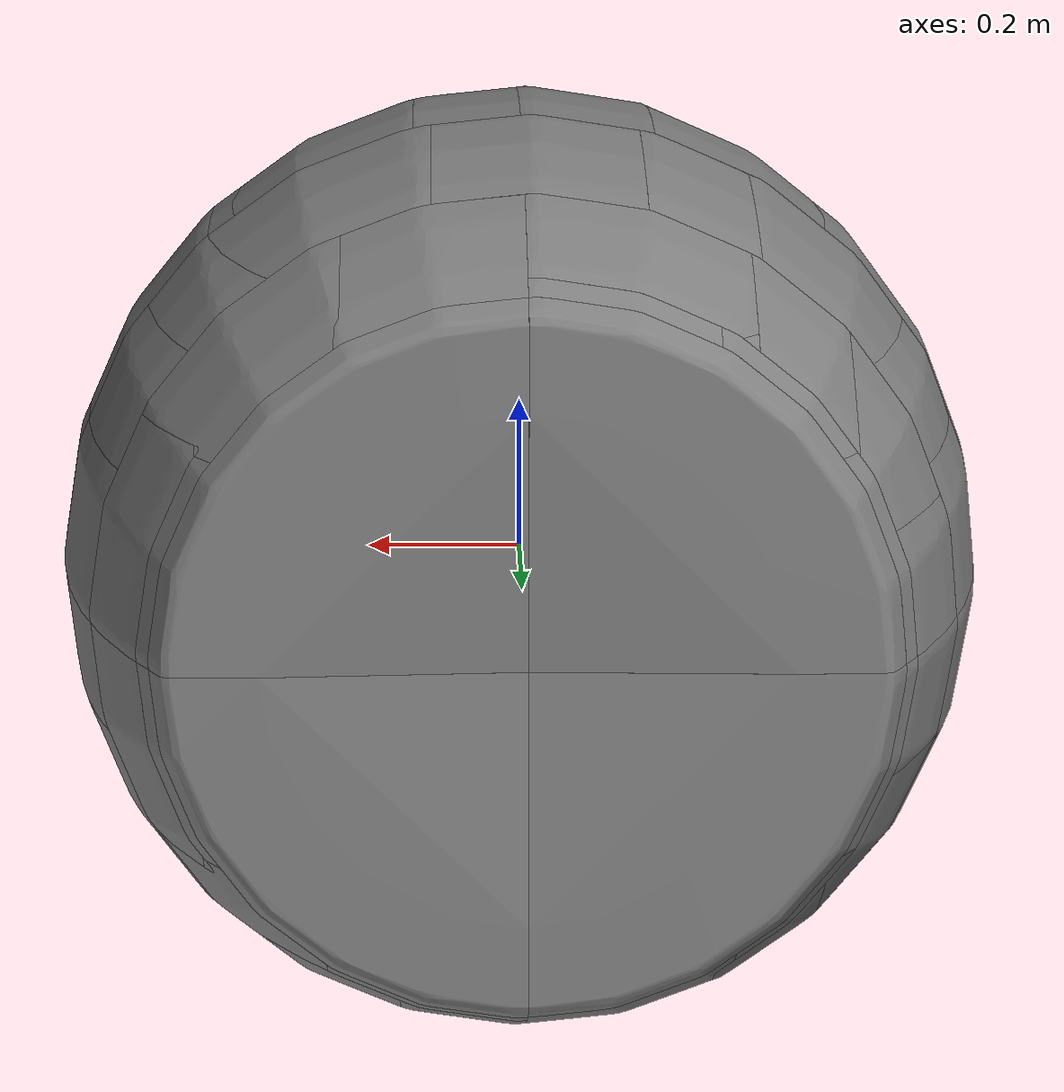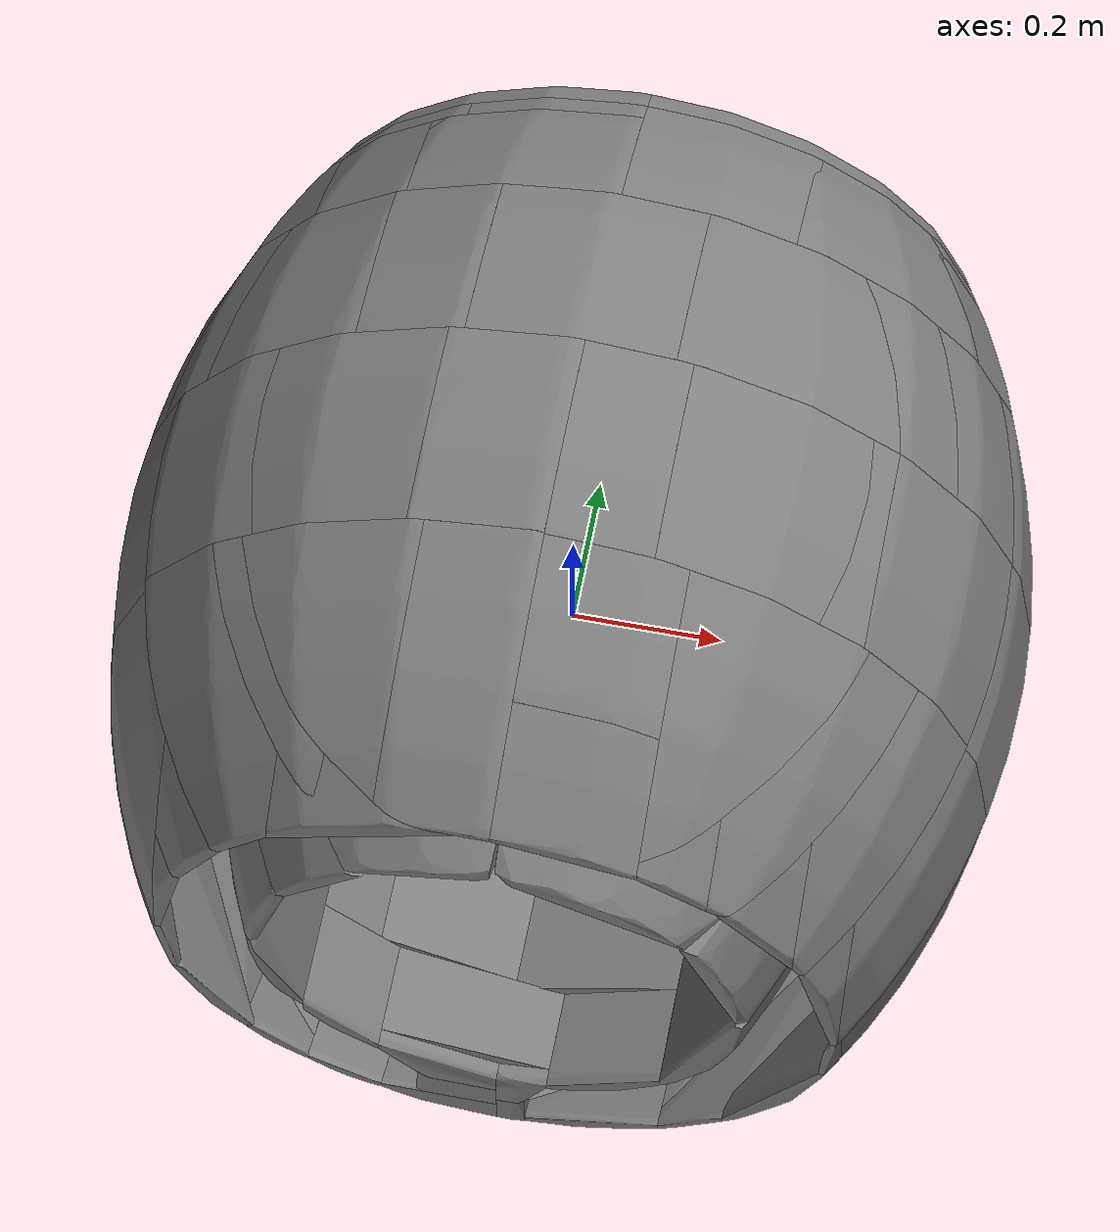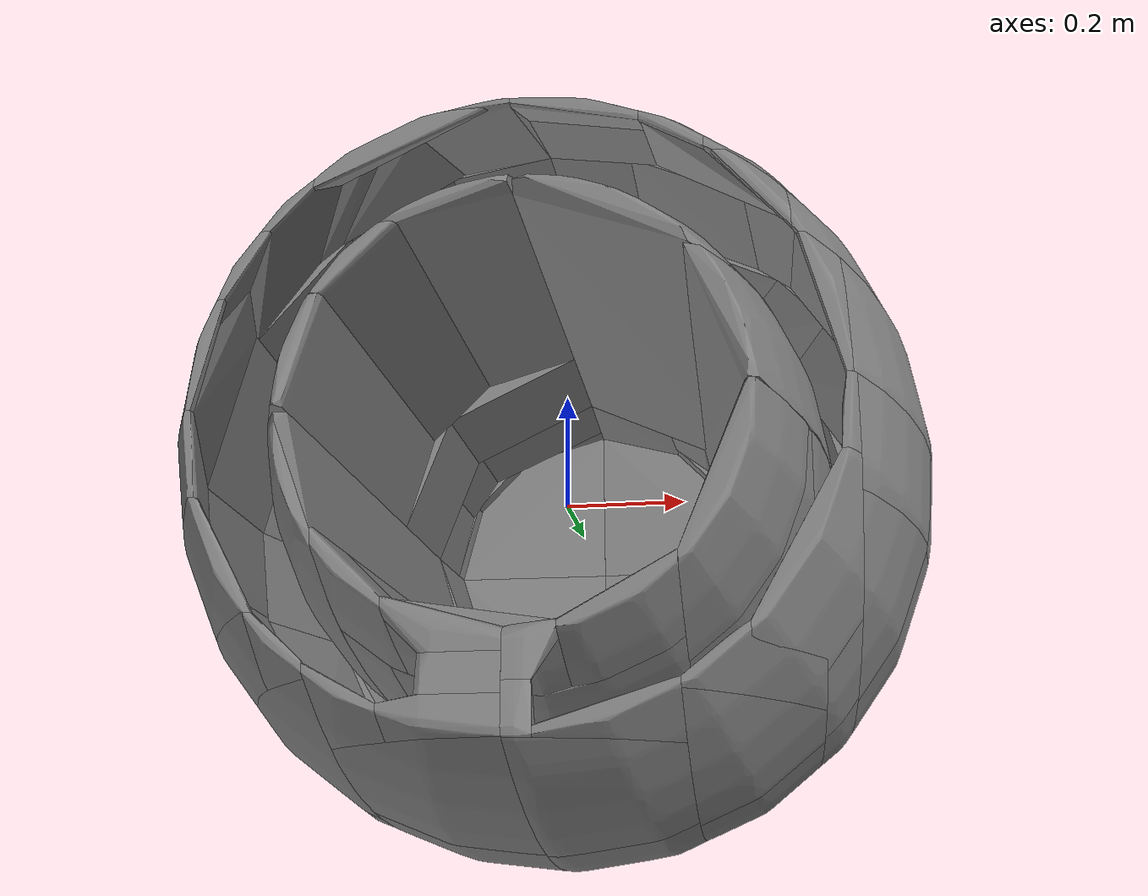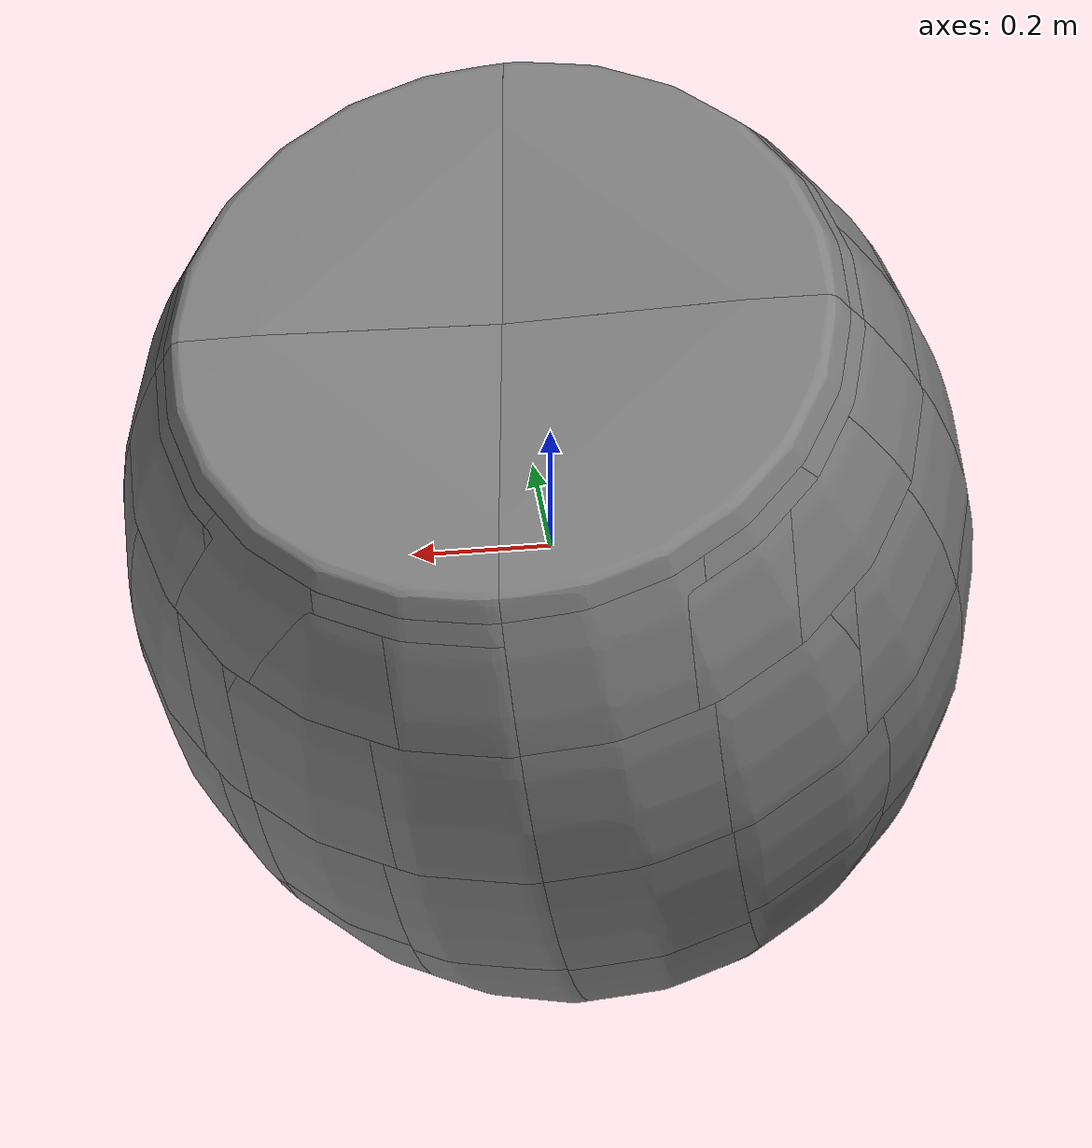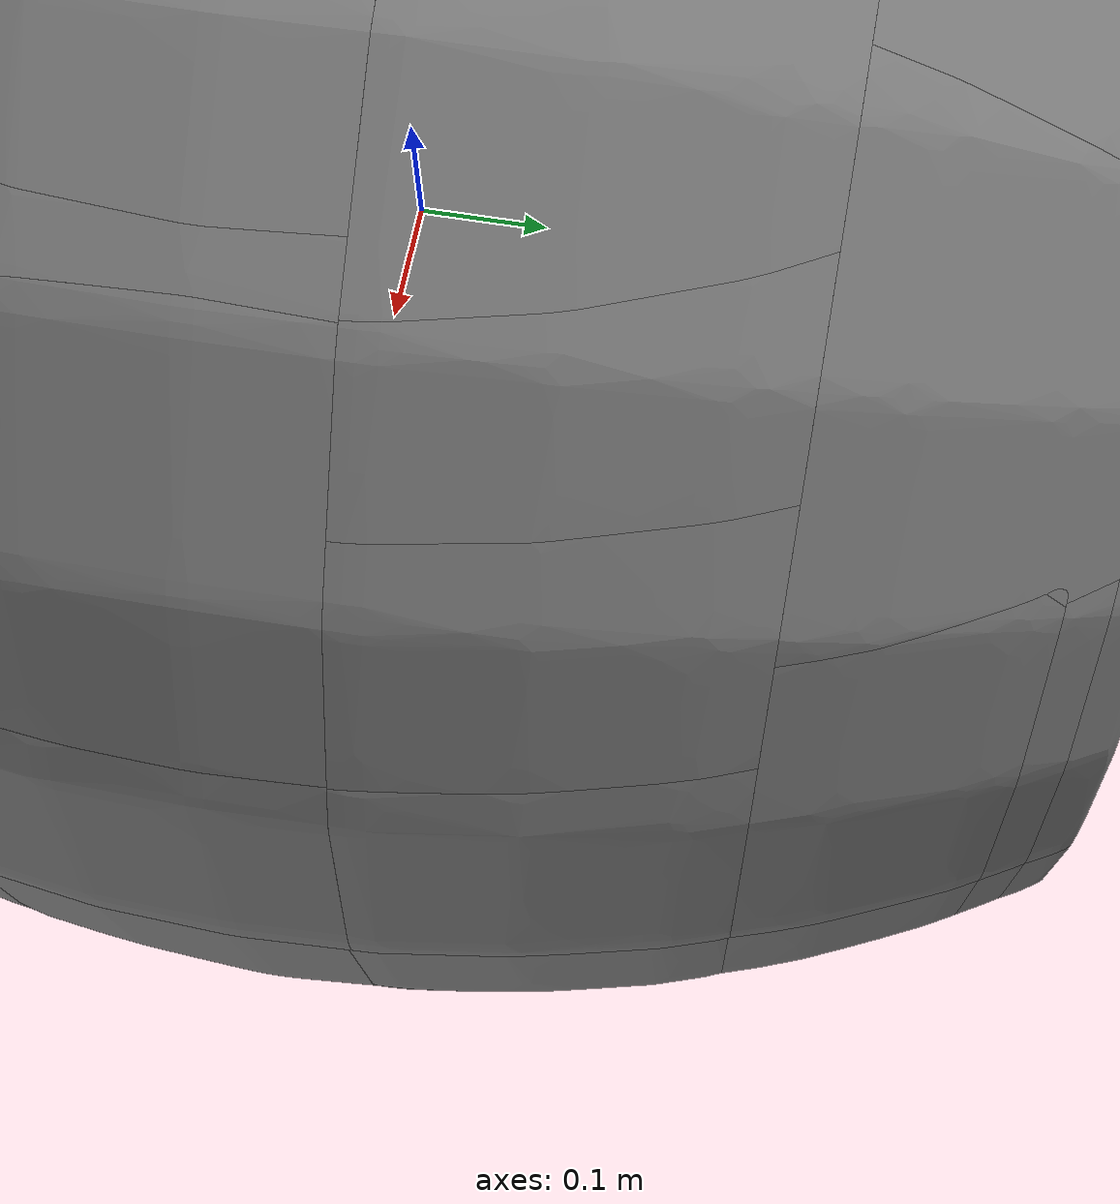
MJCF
<mujoco model="MuJoCo Model">
  <compiler angle="radian" meshdir="."/>

  <asset>
    <mesh name="convex_piece_028.obj" file="meshes/convex_piece_028.obj"/>
    <mesh name="convex_piece_069.obj" file="meshes/convex_piece_069.obj"/>
    <mesh name="convex_piece_146.obj" file="meshes/convex_piece_146.obj"/>
    <mesh name="convex_piece_067.obj" file="meshes/convex_piece_067.obj"/>
    <mesh name="convex_piece_130.obj" file="meshes/convex_piece_130.obj"/>
    <mesh name="convex_piece_107.obj" file="meshes/convex_piece_107.obj"/>
    <mesh name="convex_piece_018.obj" file="meshes/convex_piece_018.obj"/>
    <mesh name="convex_piece_026.obj" file="meshes/convex_piece_026.obj"/>
    <mesh name="convex_piece_021.obj" file="meshes/convex_piece_021.obj"/>
    <mesh name="convex_piece_049.obj" file="meshes/convex_piece_049.obj"/>
    <mesh name="convex_piece_073.obj" file="meshes/convex_piece_073.obj"/>
    <mesh name="convex_piece_079.obj" file="meshes/convex_piece_079.obj"/>
    <mesh name="convex_piece_086.obj" file="meshes/convex_piece_086.obj"/>
    <mesh name="convex_piece_051.obj" file="meshes/convex_piece_051.obj"/>
    <mesh name="convex_piece_081.obj" file="meshes/convex_piece_081.obj"/>
    <mesh name="convex_piece_030.obj" file="meshes/convex_piece_030.obj"/>
    <mesh name="convex_piece_068.obj" file="meshes/convex_piece_068.obj"/>
    <mesh name="convex_piece_109.obj" file="meshes/convex_piece_109.obj"/>
    <mesh name="convex_piece_119.obj" file="meshes/convex_piece_119.obj"/>
    <mesh name="convex_piece_061.obj" file="meshes/convex_piece_061.obj"/>
    <mesh name="convex_piece_088.obj" file="meshes/convex_piece_088.obj"/>
    <mesh name="convex_piece_058.obj" file="meshes/convex_piece_058.obj"/>
    <mesh name="convex_piece_116.obj" file="meshes/convex_piece_116.obj"/>
    <mesh name="convex_piece_143.obj" file="meshes/convex_piece_143.obj"/>
    <mesh name="convex_piece_070.obj" file="meshes/convex_piece_070.obj"/>
    <mesh name="convex_piece_089.obj" file="meshes/convex_piece_089.obj"/>
    <mesh name="convex_piece_115.obj" file="meshes/convex_piece_115.obj"/>
    <mesh name="convex_piece_110.obj" file="meshes/convex_piece_110.obj"/>
    <mesh name="convex_piece_012.obj" file="meshes/convex_piece_012.obj"/>
    <mesh name="convex_piece_046.obj" file="meshes/convex_piece_046.obj"/>
    <mesh name="convex_piece_106.obj" file="meshes/convex_piece_106.obj"/>
    <mesh name="convex_piece_042.obj" file="meshes/convex_piece_042.obj"/>
    <mesh name="convex_piece_075.obj" file="meshes/convex_piece_075.obj"/>
    <mesh name="convex_piece_057.obj" file="meshes/convex_piece_057.obj"/>
    <mesh name="convex_piece_019.obj" file="meshes/convex_piece_019.obj"/>
    <mesh name="convex_piece_040.obj" file="meshes/convex_piece_040.obj"/>
    <mesh name="convex_piece_121.obj" file="meshes/convex_piece_121.obj"/>
    <mesh name="convex_piece_014.obj" file="meshes/convex_piece_014.obj"/>
    <mesh name="convex_piece_020.obj" file="meshes/convex_piece_020.obj"/>
    <mesh name="convex_piece_080.obj" file="meshes/convex_piece_080.obj"/>
    <mesh name="convex_piece_055.obj" file="meshes/convex_piece_055.obj"/>
    <mesh name="convex_piece_004.obj" file="meshes/convex_piece_004.obj"/>
    <mesh name="convex_piece_039.obj" file="meshes/convex_piece_039.obj"/>
    <mesh name="convex_piece_060.obj" file="meshes/convex_piece_060.obj"/>
    <mesh name="convex_piece_027.obj" file="meshes/convex_piece_027.obj"/>
    <mesh name="convex_piece_112.obj" file="meshes/convex_piece_112.obj"/>
    <mesh name="convex_piece_001.obj" file="meshes/convex_piece_001.obj"/>
    <mesh name="convex_piece_091.obj" file="meshes/convex_piece_091.obj"/>
    <mesh name="convex_piece_015.obj" file="meshes/convex_piece_015.obj"/>
    <mesh name="convex_piece_072.obj" file="meshes/convex_piece_072.obj"/>
    <mesh name="convex_piece_005.obj" file="meshes/convex_piece_005.obj"/>
    <mesh name="convex_piece_037.obj" file="meshes/convex_piece_037.obj"/>
    <mesh name="convex_piece_036.obj" file="meshes/convex_piece_036.obj"/>
    <mesh name="convex_piece_024.obj" file="meshes/convex_piece_024.obj"/>
    <mesh name="convex_piece_101.obj" file="meshes/convex_piece_101.obj"/>
    <mesh name="convex_piece_084.obj" file="meshes/convex_piece_084.obj"/>
    <mesh name="convex_piece_132.obj" file="meshes/convex_piece_132.obj"/>
    <mesh name="convex_piece_114.obj" file="meshes/convex_piece_114.obj"/>
    <mesh name="convex_piece_013.obj" file="meshes/convex_piece_013.obj"/>
    <mesh name="convex_piece_054.obj" file="meshes/convex_piece_054.obj"/>
    <mesh name="convex_piece_048.obj" file="meshes/convex_piece_048.obj"/>
    <mesh name="convex_piece_029.obj" file="meshes/convex_piece_029.obj"/>
    <mesh name="convex_piece_137.obj" file="meshes/convex_piece_137.obj"/>
    <mesh name="convex_piece_032.obj" file="meshes/convex_piece_032.obj"/>
    <mesh name="convex_piece_074.obj" file="meshes/convex_piece_074.obj"/>
    <mesh name="convex_piece_139.obj" file="meshes/convex_piece_139.obj"/>
    <mesh name="convex_piece_050.obj" file="meshes/convex_piece_050.obj"/>
    <mesh name="convex_piece_131.obj" file="meshes/convex_piece_131.obj"/>
    <mesh name="convex_piece_125.obj" file="meshes/convex_piece_125.obj"/>
    <mesh name="convex_piece_034.obj" file="meshes/convex_piece_034.obj"/>
    <mesh name="convex_piece_092.obj" file="meshes/convex_piece_092.obj"/>
    <mesh name="convex_piece_066.obj" file="meshes/convex_piece_066.obj"/>
    <mesh name="convex_piece_082.obj" file="meshes/convex_piece_082.obj"/>
    <mesh name="convex_piece_002.obj" file="meshes/convex_piece_002.obj"/>
    <mesh name="convex_piece_093.obj" file="meshes/convex_piece_093.obj"/>
    <mesh name="convex_piece_035.obj" file="meshes/convex_piece_035.obj"/>
    <mesh name="convex_piece_043.obj" file="meshes/convex_piece_043.obj"/>
    <mesh name="convex_piece_083.obj" file="meshes/convex_piece_083.obj"/>
    <mesh name="convex_piece_025.obj" file="meshes/convex_piece_025.obj"/>
    <mesh name="convex_piece_105.obj" file="meshes/convex_piece_105.obj"/>
    <mesh name="convex_piece_065.obj" file="meshes/convex_piece_065.obj"/>
    <mesh name="convex_piece_117.obj" file="meshes/convex_piece_117.obj"/>
    <mesh name="convex_piece_141.obj" file="meshes/convex_piece_141.obj"/>
    <mesh name="convex_piece_033.obj" file="meshes/convex_piece_033.obj"/>
    <mesh name="convex_piece_118.obj" file="meshes/convex_piece_118.obj"/>
    <mesh name="convex_piece_102.obj" file="meshes/convex_piece_102.obj"/>
    <mesh name="convex_piece_010.obj" file="meshes/convex_piece_010.obj"/>
    <mesh name="convex_piece_127.obj" file="meshes/convex_piece_127.obj"/>
    <mesh name="convex_piece_111.obj" file="meshes/convex_piece_111.obj"/>
    <mesh name="convex_piece_077.obj" file="meshes/convex_piece_077.obj"/>
    <mesh name="convex_piece_094.obj" file="meshes/convex_piece_094.obj"/>
    <mesh name="convex_piece_071.obj" file="meshes/convex_piece_071.obj"/>
    <mesh name="convex_piece_142.obj" file="meshes/convex_piece_142.obj"/>
    <mesh name="convex_piece_100.obj" file="meshes/convex_piece_100.obj"/>
    <mesh name="convex_piece_044.obj" file="meshes/convex_piece_044.obj"/>
    <mesh name="convex_piece_006.obj" file="meshes/convex_piece_006.obj"/>
    <mesh name="convex_piece_045.obj" file="meshes/convex_piece_045.obj"/>
    <mesh name="convex_piece_056.obj" file="meshes/convex_piece_056.obj"/>
    <mesh name="convex_piece_003.obj" file="meshes/convex_piece_003.obj"/>
    <mesh name="convex_piece_129.obj" file="meshes/convex_piece_129.obj"/>
    <mesh name="convex_piece_038.obj" file="meshes/convex_piece_038.obj"/>
    <mesh name="convex_piece_108.obj" file="meshes/convex_piece_108.obj"/>
    <mesh name="convex_piece_047.obj" file="meshes/convex_piece_047.obj"/>
    <mesh name="convex_piece_104.obj" file="meshes/convex_piece_104.obj"/>
    <mesh name="convex_piece_136.obj" file="meshes/convex_piece_136.obj"/>
    <mesh name="convex_piece_085.obj" file="meshes/convex_piece_085.obj"/>
    <mesh name="convex_piece_008.obj" file="meshes/convex_piece_008.obj"/>
    <mesh name="convex_piece_140.obj" file="meshes/convex_piece_140.obj"/>
    <mesh name="convex_piece_124.obj" file="meshes/convex_piece_124.obj"/>
    <mesh name="convex_piece_063.obj" file="meshes/convex_piece_063.obj"/>
    <mesh name="convex_piece_095.obj" file="meshes/convex_piece_095.obj"/>
    <mesh name="convex_piece_023.obj" file="meshes/convex_piece_023.obj"/>
    <mesh name="convex_piece_022.obj" file="meshes/convex_piece_022.obj"/>
    <mesh name="convex_piece_126.obj" file="meshes/convex_piece_126.obj"/>
    <mesh name="convex_piece_113.obj" file="meshes/convex_piece_113.obj"/>
    <mesh name="convex_piece_011.obj" file="meshes/convex_piece_011.obj"/>
    <mesh name="convex_piece_120.obj" file="meshes/convex_piece_120.obj"/>
    <mesh name="convex_piece_053.obj" file="meshes/convex_piece_053.obj"/>
    <mesh name="convex_piece_097.obj" file="meshes/convex_piece_097.obj"/>
    <mesh name="convex_piece_078.obj" file="meshes/convex_piece_078.obj"/>
    <mesh name="convex_piece_134.obj" file="meshes/convex_piece_134.obj"/>
    <mesh name="convex_piece_000.obj" file="meshes/convex_piece_000.obj"/>
    <mesh name="convex_piece_144.obj" file="meshes/convex_piece_144.obj"/>
    <mesh name="convex_piece_016.obj" file="meshes/convex_piece_016.obj"/>
    <mesh name="convex_piece_098.obj" file="meshes/convex_piece_098.obj"/>
    <mesh name="convex_piece_133.obj" file="meshes/convex_piece_133.obj"/>
    <mesh name="convex_piece_076.obj" file="meshes/convex_piece_076.obj"/>
    <mesh name="convex_piece_099.obj" file="meshes/convex_piece_099.obj"/>
    <mesh name="convex_piece_096.obj" file="meshes/convex_piece_096.obj"/>
    <mesh name="convex_piece_009.obj" file="meshes/convex_piece_009.obj"/>
    <mesh name="convex_piece_007.obj" file="meshes/convex_piece_007.obj"/>
    <mesh name="convex_piece_052.obj" file="meshes/convex_piece_052.obj"/>
    <mesh name="convex_piece_059.obj" file="meshes/convex_piece_059.obj"/>
    <mesh name="convex_piece_041.obj" file="meshes/convex_piece_041.obj"/>
    <mesh name="convex_piece_064.obj" file="meshes/convex_piece_064.obj"/>
    <mesh name="convex_piece_135.obj" file="meshes/convex_piece_135.obj"/>
    <mesh name="convex_piece_017.obj" file="meshes/convex_piece_017.obj"/>
    <mesh name="convex_piece_090.obj" file="meshes/convex_piece_090.obj"/>
    <mesh name="convex_piece_031.obj" file="meshes/convex_piece_031.obj"/>
    <mesh name="convex_piece_138.obj" file="meshes/convex_piece_138.obj"/>
    <mesh name="convex_piece_062.obj" file="meshes/convex_piece_062.obj"/>
    <mesh name="convex_piece_123.obj" file="meshes/convex_piece_123.obj"/>
    <mesh name="convex_piece_087.obj" file="meshes/convex_piece_087.obj"/>
    <mesh name="convex_piece_103.obj" file="meshes/convex_piece_103.obj"/>
    <mesh name="convex_piece_128.obj" file="meshes/convex_piece_128.obj"/>
    <mesh name="convex_piece_122.obj" file="meshes/convex_piece_122.obj"/>
    <mesh name="convex_piece_145.obj" file="meshes/convex_piece_145.obj"/>
  </asset>

  <worldbody>
    <geom name="object_visual_0" type="mesh" contype="0" conaffinity="0" density="0" mesh="convex_piece_028.obj"/>
    <geom name="object_collision_0" type="mesh" mesh="convex_piece_028.obj"/>
    <geom name="object_visual_1" type="mesh" contype="0" conaffinity="0" density="0" mesh="convex_piece_069.obj"/>
    <geom name="object_collision_1" type="mesh" mesh="convex_piece_069.obj"/>
    <geom name="object_visual_2" type="mesh" contype="0" conaffinity="0" density="0" mesh="convex_piece_146.obj"/>
    <geom name="object_collision_2" type="mesh" mesh="convex_piece_146.obj"/>
    <geom name="object_visual_3" type="mesh" contype="0" conaffinity="0" density="0" mesh="convex_piece_067.obj"/>
    <geom name="object_collision_3" type="mesh" mesh="convex_piece_067.obj"/>
    <geom name="object_visual_4" type="mesh" contype="0" conaffinity="0" density="0" mesh="convex_piece_130.obj"/>
    <geom name="object_collision_4" type="mesh" mesh="convex_piece_130.obj"/>
    <geom name="object_visual_5" type="mesh" contype="0" conaffinity="0" density="0" mesh="convex_piece_107.obj"/>
    <geom name="object_collision_5" type="mesh" mesh="convex_piece_107.obj"/>
    <geom name="object_visual_6" type="mesh" contype="0" conaffinity="0" density="0" mesh="convex_piece_018.obj"/>
    <geom name="object_collision_6" type="mesh" mesh="convex_piece_018.obj"/>
    <geom name="object_visual_7" type="mesh" contype="0" conaffinity="0" density="0" mesh="convex_piece_026.obj"/>
    <geom name="object_collision_7" type="mesh" mesh="convex_piece_026.obj"/>
    <geom name="object_visual_8" type="mesh" contype="0" conaffinity="0" density="0" mesh="convex_piece_021.obj"/>
    <geom name="object_collision_8" type="mesh" mesh="convex_piece_021.obj"/>
    <geom name="object_visual_9" type="mesh" contype="0" conaffinity="0" density="0" mesh="convex_piece_049.obj"/>
    <geom name="object_collision_9" type="mesh" mesh="convex_piece_049.obj"/>
    <geom name="object_visual_10" type="mesh" contype="0" conaffinity="0" density="0" mesh="convex_piece_073.obj"/>
    <geom name="object_collision_10" type="mesh" mesh="convex_piece_073.obj"/>
    <geom name="object_visual_11" type="mesh" contype="0" conaffinity="0" density="0" mesh="convex_piece_079.obj"/>
    <geom name="object_collision_11" type="mesh" mesh="convex_piece_079.obj"/>
    <geom name="object_visual_12" type="mesh" contype="0" conaffinity="0" density="0" mesh="convex_piece_086.obj"/>
    <geom name="object_collision_12" type="mesh" mesh="convex_piece_086.obj"/>
    <geom name="object_visual_13" type="mesh" contype="0" conaffinity="0" density="0" mesh="convex_piece_051.obj"/>
    <geom name="object_collision_13" type="mesh" mesh="convex_piece_051.obj"/>
    <geom name="object_visual_14" type="mesh" contype="0" conaffinity="0" density="0" mesh="convex_piece_081.obj"/>
    <geom name="object_collision_14" type="mesh" mesh="convex_piece_081.obj"/>
    <geom name="object_visual_15" type="mesh" contype="0" conaffinity="0" density="0" mesh="convex_piece_030.obj"/>
    <geom name="object_collision_15" type="mesh" mesh="convex_piece_030.obj"/>
    <geom name="object_visual_16" type="mesh" contype="0" conaffinity="0" density="0" mesh="convex_piece_068.obj"/>
    <geom name="object_collision_16" type="mesh" mesh="convex_piece_068.obj"/>
    <geom name="object_visual_17" type="mesh" contype="0" conaffinity="0" density="0" mesh="convex_piece_109.obj"/>
    <geom name="object_collision_17" type="mesh" mesh="convex_piece_109.obj"/>
    <geom name="object_visual_18" type="mesh" contype="0" conaffinity="0" density="0" mesh="convex_piece_119.obj"/>
    <geom name="object_collision_18" type="mesh" mesh="convex_piece_119.obj"/>
    <geom name="object_visual_19" type="mesh" contype="0" conaffinity="0" density="0" mesh="convex_piece_061.obj"/>
    <geom name="object_collision_19" type="mesh" mesh="convex_piece_061.obj"/>
    <geom name="object_visual_20" type="mesh" contype="0" conaffinity="0" density="0" mesh="convex_piece_088.obj"/>
    <geom name="object_collision_20" type="mesh" mesh="convex_piece_088.obj"/>
    <geom name="object_visual_21" type="mesh" contype="0" conaffinity="0" density="0" mesh="convex_piece_058.obj"/>
    <geom name="object_collision_21" type="mesh" mesh="convex_piece_058.obj"/>
    <geom name="object_visual_22" type="mesh" contype="0" conaffinity="0" density="0" mesh="convex_piece_116.obj"/>
    <geom name="object_collision_22" type="mesh" mesh="convex_piece_116.obj"/>
    <geom name="object_visual_23" type="mesh" contype="0" conaffinity="0" density="0" mesh="convex_piece_143.obj"/>
    <geom name="object_collision_23" type="mesh" mesh="convex_piece_143.obj"/>
    <geom name="object_visual_24" type="mesh" contype="0" conaffinity="0" density="0" mesh="convex_piece_070.obj"/>
    <geom name="object_collision_24" type="mesh" mesh="convex_piece_070.obj"/>
    <geom name="object_visual_25" type="mesh" contype="0" conaffinity="0" density="0" mesh="convex_piece_089.obj"/>
    <geom name="object_collision_25" type="mesh" mesh="convex_piece_089.obj"/>
    <geom name="object_visual_26" type="mesh" contype="0" conaffinity="0" density="0" mesh="convex_piece_115.obj"/>
    <geom name="object_collision_26" type="mesh" mesh="convex_piece_115.obj"/>
    <geom name="object_visual_27" type="mesh" contype="0" conaffinity="0" density="0" mesh="convex_piece_110.obj"/>
    <geom name="object_collision_27" type="mesh" mesh="convex_piece_110.obj"/>
    <geom name="object_visual_28" type="mesh" contype="0" conaffinity="0" density="0" mesh="convex_piece_012.obj"/>
    <geom name="object_collision_28" type="mesh" mesh="convex_piece_012.obj"/>
    <geom name="object_visual_29" type="mesh" contype="0" conaffinity="0" density="0" mesh="convex_piece_046.obj"/>
    <geom name="object_collision_29" type="mesh" mesh="convex_piece_046.obj"/>
    <geom name="object_visual_30" type="mesh" contype="0" conaffinity="0" density="0" mesh="convex_piece_106.obj"/>
    <geom name="object_collision_30" type="mesh" mesh="convex_piece_106.obj"/>
    <geom name="object_visual_31" type="mesh" contype="0" conaffinity="0" density="0" mesh="convex_piece_042.obj"/>
    <geom name="object_collision_31" type="mesh" mesh="convex_piece_042.obj"/>
    <geom name="object_visual_32" type="mesh" contype="0" conaffinity="0" density="0" mesh="convex_piece_075.obj"/>
    <geom name="object_collision_32" type="mesh" mesh="convex_piece_075.obj"/>
    <geom name="object_visual_33" type="mesh" contype="0" conaffinity="0" density="0" mesh="convex_piece_057.obj"/>
    <geom name="object_collision_33" type="mesh" mesh="convex_piece_057.obj"/>
    <geom name="object_visual_34" type="mesh" contype="0" conaffinity="0" density="0" mesh="convex_piece_019.obj"/>
    <geom name="object_collision_34" type="mesh" mesh="convex_piece_019.obj"/>
    <geom name="object_visual_35" type="mesh" contype="0" conaffinity="0" density="0" mesh="convex_piece_040.obj"/>
    <geom name="object_collision_35" type="mesh" mesh="convex_piece_040.obj"/>
    <geom name="object_visual_36" type="mesh" contype="0" conaffinity="0" density="0" mesh="convex_piece_121.obj"/>
    <geom name="object_collision_36" type="mesh" mesh="convex_piece_121.obj"/>
    <geom name="object_visual_37" type="mesh" contype="0" conaffinity="0" density="0" mesh="convex_piece_014.obj"/>
    <geom name="object_collision_37" type="mesh" mesh="convex_piece_014.obj"/>
    <geom name="object_visual_38" type="mesh" contype="0" conaffinity="0" density="0" mesh="convex_piece_020.obj"/>
    <geom name="object_collision_38" type="mesh" mesh="convex_piece_020.obj"/>
    <geom name="object_visual_39" type="mesh" contype="0" conaffinity="0" density="0" mesh="convex_piece_080.obj"/>
    <geom name="object_collision_39" type="mesh" mesh="convex_piece_080.obj"/>
    <geom name="object_visual_40" type="mesh" contype="0" conaffinity="0" density="0" mesh="convex_piece_055.obj"/>
    <geom name="object_collision_40" type="mesh" mesh="convex_piece_055.obj"/>
    <geom name="object_visual_41" type="mesh" contype="0" conaffinity="0" density="0" mesh="convex_piece_004.obj"/>
    <geom name="object_collision_41" type="mesh" mesh="convex_piece_004.obj"/>
    <geom name="object_visual_42" type="mesh" contype="0" conaffinity="0" density="0" mesh="convex_piece_039.obj"/>
    <geom name="object_collision_42" type="mesh" mesh="convex_piece_039.obj"/>
    <geom name="object_visual_43" type="mesh" contype="0" conaffinity="0" density="0" mesh="convex_piece_060.obj"/>
    <geom name="object_collision_43" type="mesh" mesh="convex_piece_060.obj"/>
    <geom name="object_visual_44" type="mesh" contype="0" conaffinity="0" density="0" mesh="convex_piece_027.obj"/>
    <geom name="object_collision_44" type="mesh" mesh="convex_piece_027.obj"/>
    <geom name="object_visual_45" type="mesh" contype="0" conaffinity="0" density="0" mesh="convex_piece_112.obj"/>
    <geom name="object_collision_45" type="mesh" mesh="convex_piece_112.obj"/>
    <geom name="object_visual_46" type="mesh" contype="0" conaffinity="0" density="0" mesh="convex_piece_001.obj"/>
    <geom name="object_collision_46" type="mesh" mesh="convex_piece_001.obj"/>
    <geom name="object_visual_47" type="mesh" contype="0" conaffinity="0" density="0" mesh="convex_piece_091.obj"/>
    <geom name="object_collision_47" type="mesh" mesh="convex_piece_091.obj"/>
    <geom name="object_visual_48" type="mesh" contype="0" conaffinity="0" density="0" mesh="convex_piece_015.obj"/>
    <geom name="object_collision_48" type="mesh" mesh="convex_piece_015.obj"/>
    <geom name="object_visual_49" type="mesh" contype="0" conaffinity="0" density="0" mesh="convex_piece_072.obj"/>
    <geom name="object_collision_49" type="mesh" mesh="convex_piece_072.obj"/>
    <geom name="object_visual_50" type="mesh" contype="0" conaffinity="0" density="0" mesh="convex_piece_005.obj"/>
    <geom name="object_collision_50" type="mesh" mesh="convex_piece_005.obj"/>
    <geom name="object_visual_51" type="mesh" contype="0" conaffinity="0" density="0" mesh="convex_piece_037.obj"/>
    <geom name="object_collision_51" type="mesh" mesh="convex_piece_037.obj"/>
    <geom name="object_visual_52" type="mesh" contype="0" conaffinity="0" density="0" mesh="convex_piece_036.obj"/>
    <geom name="object_collision_52" type="mesh" mesh="convex_piece_036.obj"/>
    <geom name="object_visual_53" type="mesh" contype="0" conaffinity="0" density="0" mesh="convex_piece_024.obj"/>
    <geom name="object_collision_53" type="mesh" mesh="convex_piece_024.obj"/>
    <geom name="object_visual_54" type="mesh" contype="0" conaffinity="0" density="0" mesh="convex_piece_101.obj"/>
    <geom name="object_collision_54" type="mesh" mesh="convex_piece_101.obj"/>
    <geom name="object_visual_55" type="mesh" contype="0" conaffinity="0" density="0" mesh="convex_piece_084.obj"/>
    <geom name="object_collision_55" type="mesh" mesh="convex_piece_084.obj"/>
    <geom name="object_visual_56" type="mesh" contype="0" conaffinity="0" density="0" mesh="convex_piece_132.obj"/>
    <geom name="object_collision_56" type="mesh" mesh="convex_piece_132.obj"/>
    <geom name="object_visual_57" type="mesh" contype="0" conaffinity="0" density="0" mesh="convex_piece_114.obj"/>
    <geom name="object_collision_57" type="mesh" mesh="convex_piece_114.obj"/>
    <geom name="object_visual_58" type="mesh" contype="0" conaffinity="0" density="0" mesh="convex_piece_013.obj"/>
    <geom name="object_collision_58" type="mesh" mesh="convex_piece_013.obj"/>
    <geom name="object_visual_59" type="mesh" contype="0" conaffinity="0" density="0" mesh="convex_piece_054.obj"/>
    <geom name="object_collision_59" type="mesh" mesh="convex_piece_054.obj"/>
    <geom name="object_visual_60" type="mesh" contype="0" conaffinity="0" density="0" mesh="convex_piece_048.obj"/>
    <geom name="object_collision_60" type="mesh" mesh="convex_piece_048.obj"/>
    <geom name="object_visual_61" type="mesh" contype="0" conaffinity="0" density="0" mesh="convex_piece_029.obj"/>
    <geom name="object_collision_61" type="mesh" mesh="convex_piece_029.obj"/>
    <geom name="object_visual_62" type="mesh" contype="0" conaffinity="0" density="0" mesh="convex_piece_137.obj"/>
    <geom name="object_collision_62" type="mesh" mesh="convex_piece_137.obj"/>
    <geom name="object_visual_63" type="mesh" contype="0" conaffinity="0" density="0" mesh="convex_piece_032.obj"/>
    <geom name="object_collision_63" type="mesh" mesh="convex_piece_032.obj"/>
    <geom name="object_visual_64" type="mesh" contype="0" conaffinity="0" density="0" mesh="convex_piece_074.obj"/>
    <geom name="object_collision_64" type="mesh" mesh="convex_piece_074.obj"/>
    <geom name="object_visual_65" type="mesh" contype="0" conaffinity="0" density="0" mesh="convex_piece_139.obj"/>
    <geom name="object_collision_65" type="mesh" mesh="convex_piece_139.obj"/>
    <geom name="object_visual_66" type="mesh" contype="0" conaffinity="0" density="0" mesh="convex_piece_050.obj"/>
    <geom name="object_collision_66" type="mesh" mesh="convex_piece_050.obj"/>
    <geom name="object_visual_67" type="mesh" contype="0" conaffinity="0" density="0" mesh="convex_piece_131.obj"/>
    <geom name="object_collision_67" type="mesh" mesh="convex_piece_131.obj"/>
    <geom name="object_visual_68" type="mesh" contype="0" conaffinity="0" density="0" mesh="convex_piece_125.obj"/>
    <geom name="object_collision_68" type="mesh" mesh="convex_piece_125.obj"/>
    <geom name="object_visual_69" type="mesh" contype="0" conaffinity="0" density="0" mesh="convex_piece_034.obj"/>
    <geom name="object_collision_69" type="mesh" mesh="convex_piece_034.obj"/>
    <geom name="object_visual_70" type="mesh" contype="0" conaffinity="0" density="0" mesh="convex_piece_092.obj"/>
    <geom name="object_collision_70" type="mesh" mesh="convex_piece_092.obj"/>
    <geom name="object_visual_71" type="mesh" contype="0" conaffinity="0" density="0" mesh="convex_piece_066.obj"/>
    <geom name="object_collision_71" type="mesh" mesh="convex_piece_066.obj"/>
    <geom name="object_visual_72" type="mesh" contype="0" conaffinity="0" density="0" mesh="convex_piece_082.obj"/>
    <geom name="object_collision_72" type="mesh" mesh="convex_piece_082.obj"/>
    <geom name="object_visual_73" type="mesh" contype="0" conaffinity="0" density="0" mesh="convex_piece_002.obj"/>
    <geom name="object_collision_73" type="mesh" mesh="convex_piece_002.obj"/>
    <geom name="object_visual_74" type="mesh" contype="0" conaffinity="0" density="0" mesh="convex_piece_093.obj"/>
    <geom name="object_collision_74" type="mesh" mesh="convex_piece_093.obj"/>
    <geom name="object_visual_75" type="mesh" contype="0" conaffinity="0" density="0" mesh="convex_piece_035.obj"/>
    <geom name="object_collision_75" type="mesh" mesh="convex_piece_035.obj"/>
    <geom name="object_visual_76" type="mesh" contype="0" conaffinity="0" density="0" mesh="convex_piece_043.obj"/>
    <geom name="object_collision_76" type="mesh" mesh="convex_piece_043.obj"/>
    <geom name="object_visual_77" type="mesh" contype="0" conaffinity="0" density="0" mesh="convex_piece_083.obj"/>
    <geom name="object_collision_77" type="mesh" mesh="convex_piece_083.obj"/>
    <geom name="object_visual_78" type="mesh" contype="0" conaffinity="0" density="0" mesh="convex_piece_025.obj"/>
    <geom name="object_collision_78" type="mesh" mesh="convex_piece_025.obj"/>
    <geom name="object_visual_79" type="mesh" contype="0" conaffinity="0" density="0" mesh="convex_piece_105.obj"/>
    <geom name="object_collision_79" type="mesh" mesh="convex_piece_105.obj"/>
    <geom name="object_visual_80" type="mesh" contype="0" conaffinity="0" density="0" mesh="convex_piece_065.obj"/>
    <geom name="object_collision_80" type="mesh" mesh="convex_piece_065.obj"/>
    <geom name="object_visual_81" type="mesh" contype="0" conaffinity="0" density="0" mesh="convex_piece_117.obj"/>
    <geom name="object_collision_81" type="mesh" mesh="convex_piece_117.obj"/>
    <geom name="object_visual_82" type="mesh" contype="0" conaffinity="0" density="0" mesh="convex_piece_141.obj"/>
    <geom name="object_collision_82" type="mesh" mesh="convex_piece_141.obj"/>
    <geom name="object_visual_83" type="mesh" contype="0" conaffinity="0" density="0" mesh="convex_piece_033.obj"/>
    <geom name="object_collision_83" type="mesh" mesh="convex_piece_033.obj"/>
    <geom name="object_visual_84" type="mesh" contype="0" conaffinity="0" density="0" mesh="convex_piece_118.obj"/>
    <geom name="object_collision_84" type="mesh" mesh="convex_piece_118.obj"/>
    <geom name="object_visual_85" type="mesh" contype="0" conaffinity="0" density="0" mesh="convex_piece_102.obj"/>
    <geom name="object_collision_85" type="mesh" mesh="convex_piece_102.obj"/>
    <geom name="object_visual_86" type="mesh" contype="0" conaffinity="0" density="0" mesh="convex_piece_010.obj"/>
    <geom name="object_collision_86" type="mesh" mesh="convex_piece_010.obj"/>
    <geom name="object_visual_87" type="mesh" contype="0" conaffinity="0" density="0" mesh="convex_piece_127.obj"/>
    <geom name="object_collision_87" type="mesh" mesh="convex_piece_127.obj"/>
    <geom name="object_visual_88" type="mesh" contype="0" conaffinity="0" density="0" mesh="convex_piece_111.obj"/>
    <geom name="object_collision_88" type="mesh" mesh="convex_piece_111.obj"/>
    <geom name="object_visual_89" type="mesh" contype="0" conaffinity="0" density="0" mesh="convex_piece_077.obj"/>
    <geom name="object_collision_89" type="mesh" mesh="convex_piece_077.obj"/>
    <geom name="object_visual_90" type="mesh" contype="0" conaffinity="0" density="0" mesh="convex_piece_094.obj"/>
    <geom name="object_collision_90" type="mesh" mesh="convex_piece_094.obj"/>
    <geom name="object_visual_91" type="mesh" contype="0" conaffinity="0" density="0" mesh="convex_piece_071.obj"/>
    <geom name="object_collision_91" type="mesh" mesh="convex_piece_071.obj"/>
    <geom name="object_visual_92" type="mesh" contype="0" conaffinity="0" density="0" mesh="convex_piece_142.obj"/>
    <geom name="object_collision_92" type="mesh" mesh="convex_piece_142.obj"/>
    <geom name="object_visual_93" type="mesh" contype="0" conaffinity="0" density="0" mesh="convex_piece_100.obj"/>
    <geom name="object_collision_93" type="mesh" mesh="convex_piece_100.obj"/>
    <geom name="object_visual_94" type="mesh" contype="0" conaffinity="0" density="0" mesh="convex_piece_044.obj"/>
    <geom name="object_collision_94" type="mesh" mesh="convex_piece_044.obj"/>
    <geom name="object_visual_95" type="mesh" contype="0" conaffinity="0" density="0" mesh="convex_piece_006.obj"/>
    <geom name="object_collision_95" type="mesh" mesh="convex_piece_006.obj"/>
    <geom name="object_visual_96" type="mesh" contype="0" conaffinity="0" density="0" mesh="convex_piece_045.obj"/>
    <geom name="object_collision_96" type="mesh" mesh="convex_piece_045.obj"/>
    <geom name="object_visual_97" type="mesh" contype="0" conaffinity="0" density="0" mesh="convex_piece_056.obj"/>
    <geom name="object_collision_97" type="mesh" mesh="convex_piece_056.obj"/>
    <geom name="object_visual_98" type="mesh" contype="0" conaffinity="0" density="0" mesh="convex_piece_003.obj"/>
    <geom name="object_collision_98" type="mesh" mesh="convex_piece_003.obj"/>
    <geom name="object_visual_99" type="mesh" contype="0" conaffinity="0" density="0" mesh="convex_piece_129.obj"/>
    <geom name="object_collision_99" type="mesh" mesh="convex_piece_129.obj"/>
    <geom name="object_visual_100" type="mesh" contype="0" conaffinity="0" density="0" mesh="convex_piece_038.obj"/>
    <geom name="object_collision_100" type="mesh" mesh="convex_piece_038.obj"/>
    <geom name="object_visual_101" type="mesh" contype="0" conaffinity="0" density="0" mesh="convex_piece_108.obj"/>
    <geom name="object_collision_101" type="mesh" mesh="convex_piece_108.obj"/>
    <geom name="object_visual_102" type="mesh" contype="0" conaffinity="0" density="0" mesh="convex_piece_047.obj"/>
    <geom name="object_collision_102" type="mesh" mesh="convex_piece_047.obj"/>
    <geom name="object_visual_103" type="mesh" contype="0" conaffinity="0" density="0" mesh="convex_piece_104.obj"/>
    <geom name="object_collision_103" type="mesh" mesh="convex_piece_104.obj"/>
    <geom name="object_visual_104" type="mesh" contype="0" conaffinity="0" density="0" mesh="convex_piece_136.obj"/>
    <geom name="object_collision_104" type="mesh" mesh="convex_piece_136.obj"/>
    <geom name="object_visual_105" type="mesh" contype="0" conaffinity="0" density="0" mesh="convex_piece_085.obj"/>
    <geom name="object_collision_105" type="mesh" mesh="convex_piece_085.obj"/>
    <geom name="object_visual_106" type="mesh" contype="0" conaffinity="0" density="0" mesh="convex_piece_008.obj"/>
    <geom name="object_collision_106" type="mesh" mesh="convex_piece_008.obj"/>
    <geom name="object_visual_107" type="mesh" contype="0" conaffinity="0" density="0" mesh="convex_piece_140.obj"/>
    <geom name="object_collision_107" type="mesh" mesh="convex_piece_140.obj"/>
    <geom name="object_visual_108" type="mesh" contype="0" conaffinity="0" density="0" mesh="convex_piece_124.obj"/>
    <geom name="object_collision_108" type="mesh" mesh="convex_piece_124.obj"/>
    <geom name="object_visual_109" type="mesh" contype="0" conaffinity="0" density="0" mesh="convex_piece_063.obj"/>
    <geom name="object_collision_109" type="mesh" mesh="convex_piece_063.obj"/>
    <geom name="object_visual_110" type="mesh" contype="0" conaffinity="0" density="0" mesh="convex_piece_095.obj"/>
    <geom name="object_collision_110" type="mesh" mesh="convex_piece_095.obj"/>
    <geom name="object_visual_111" type="mesh" contype="0" conaffinity="0" density="0" mesh="convex_piece_023.obj"/>
    <geom name="object_collision_111" type="mesh" mesh="convex_piece_023.obj"/>
    <geom name="object_visual_112" type="mesh" contype="0" conaffinity="0" density="0" mesh="convex_piece_022.obj"/>
    <geom name="object_collision_112" type="mesh" mesh="convex_piece_022.obj"/>
    <geom name="object_visual_113" type="mesh" contype="0" conaffinity="0" density="0" mesh="convex_piece_126.obj"/>
    <geom name="object_collision_113" type="mesh" mesh="convex_piece_126.obj"/>
    <geom name="object_visual_114" type="mesh" contype="0" conaffinity="0" density="0" mesh="convex_piece_113.obj"/>
    <geom name="object_collision_114" type="mesh" mesh="convex_piece_113.obj"/>
    <geom name="object_visual_115" type="mesh" contype="0" conaffinity="0" density="0" mesh="convex_piece_011.obj"/>
    <geom name="object_collision_115" type="mesh" mesh="convex_piece_011.obj"/>
    <geom name="object_visual_116" type="mesh" contype="0" conaffinity="0" density="0" mesh="convex_piece_120.obj"/>
    <geom name="object_collision_116" type="mesh" mesh="convex_piece_120.obj"/>
    <geom name="object_visual_117" type="mesh" contype="0" conaffinity="0" density="0" mesh="convex_piece_053.obj"/>
    <geom name="object_collision_117" type="mesh" mesh="convex_piece_053.obj"/>
    <geom name="object_visual_118" type="mesh" contype="0" conaffinity="0" density="0" mesh="convex_piece_097.obj"/>
    <geom name="object_collision_118" type="mesh" mesh="convex_piece_097.obj"/>
    <geom name="object_visual_119" type="mesh" contype="0" conaffinity="0" density="0" mesh="convex_piece_078.obj"/>
    <geom name="object_collision_119" type="mesh" mesh="convex_piece_078.obj"/>
    <geom name="object_visual_120" type="mesh" contype="0" conaffinity="0" density="0" mesh="convex_piece_134.obj"/>
    <geom name="object_collision_120" type="mesh" mesh="convex_piece_134.obj"/>
    <geom name="object_visual_121" type="mesh" contype="0" conaffinity="0" density="0" mesh="convex_piece_000.obj"/>
    <geom name="object_collision_121" type="mesh" mesh="convex_piece_000.obj"/>
    <geom name="object_visual_122" type="mesh" contype="0" conaffinity="0" density="0" mesh="convex_piece_144.obj"/>
    <geom name="object_collision_122" type="mesh" mesh="convex_piece_144.obj"/>
    <geom name="object_visual_123" type="mesh" contype="0" conaffinity="0" density="0" mesh="convex_piece_016.obj"/>
    <geom name="object_collision_123" type="mesh" mesh="convex_piece_016.obj"/>
    <geom name="object_visual_124" type="mesh" contype="0" conaffinity="0" density="0" mesh="convex_piece_098.obj"/>
    <geom name="object_collision_124" type="mesh" mesh="convex_piece_098.obj"/>
    <geom name="object_visual_125" type="mesh" contype="0" conaffinity="0" density="0" mesh="convex_piece_133.obj"/>
    <geom name="object_collision_125" type="mesh" mesh="convex_piece_133.obj"/>
    <geom name="object_visual_126" type="mesh" contype="0" conaffinity="0" density="0" mesh="convex_piece_076.obj"/>
    <geom name="object_collision_126" type="mesh" mesh="convex_piece_076.obj"/>
    <geom name="object_visual_127" type="mesh" contype="0" conaffinity="0" density="0" mesh="convex_piece_099.obj"/>
    <geom name="object_collision_127" type="mesh" mesh="convex_piece_099.obj"/>
    <geom name="object_visual_128" type="mesh" contype="0" conaffinity="0" density="0" mesh="convex_piece_096.obj"/>
    <geom name="object_collision_128" type="mesh" mesh="convex_piece_096.obj"/>
    <geom name="object_visual_129" type="mesh" contype="0" conaffinity="0" density="0" mesh="convex_piece_009.obj"/>
    <geom name="object_collision_129" type="mesh" mesh="convex_piece_009.obj"/>
    <geom name="object_visual_130" type="mesh" contype="0" conaffinity="0" density="0" mesh="convex_piece_007.obj"/>
    <geom name="object_collision_130" type="mesh" mesh="convex_piece_007.obj"/>
    <geom name="object_visual_131" type="mesh" contype="0" conaffinity="0" density="0" mesh="convex_piece_052.obj"/>
    <geom name="object_collision_131" type="mesh" mesh="convex_piece_052.obj"/>
    <geom name="object_visual_132" type="mesh" contype="0" conaffinity="0" density="0" mesh="convex_piece_059.obj"/>
    <geom name="object_collision_132" type="mesh" mesh="convex_piece_059.obj"/>
    <geom name="object_visual_133" type="mesh" contype="0" conaffinity="0" density="0" mesh="convex_piece_041.obj"/>
    <geom name="object_collision_133" type="mesh" mesh="convex_piece_041.obj"/>
    <geom name="object_visual_134" type="mesh" contype="0" conaffinity="0" density="0" mesh="convex_piece_064.obj"/>
    <geom name="object_collision_134" type="mesh" mesh="convex_piece_064.obj"/>
    <geom name="object_visual_135" type="mesh" contype="0" conaffinity="0" density="0" mesh="convex_piece_135.obj"/>
    <geom name="object_collision_135" type="mesh" mesh="convex_piece_135.obj"/>
    <geom name="object_visual_136" type="mesh" contype="0" conaffinity="0" density="0" mesh="convex_piece_017.obj"/>
    <geom name="object_collision_136" type="mesh" mesh="convex_piece_017.obj"/>
    <geom name="object_visual_137" type="mesh" contype="0" conaffinity="0" density="0" mesh="convex_piece_090.obj"/>
    <geom name="object_collision_137" type="mesh" mesh="convex_piece_090.obj"/>
    <geom name="object_visual_138" type="mesh" contype="0" conaffinity="0" density="0" mesh="convex_piece_031.obj"/>
    <geom name="object_collision_138" type="mesh" mesh="convex_piece_031.obj"/>
    <geom name="object_visual_139" type="mesh" contype="0" conaffinity="0" density="0" mesh="convex_piece_138.obj"/>
    <geom name="object_collision_139" type="mesh" mesh="convex_piece_138.obj"/>
    <geom name="object_visual_140" type="mesh" contype="0" conaffinity="0" density="0" mesh="convex_piece_062.obj"/>
    <geom name="object_collision_140" type="mesh" mesh="convex_piece_062.obj"/>
    <geom name="object_visual_141" type="mesh" contype="0" conaffinity="0" density="0" mesh="convex_piece_123.obj"/>
    <geom name="object_collision_141" type="mesh" mesh="convex_piece_123.obj"/>
    <geom name="object_visual_142" type="mesh" contype="0" conaffinity="0" density="0" mesh="convex_piece_087.obj"/>
    <geom name="object_collision_142" type="mesh" mesh="convex_piece_087.obj"/>
    <geom name="object_visual_143" type="mesh" contype="0" conaffinity="0" density="0" mesh="convex_piece_103.obj"/>
    <geom name="object_collision_143" type="mesh" mesh="convex_piece_103.obj"/>
    <geom name="object_visual_144" type="mesh" contype="0" conaffinity="0" density="0" mesh="convex_piece_128.obj"/>
    <geom name="object_collision_144" type="mesh" mesh="convex_piece_128.obj"/>
    <geom name="object_visual_145" type="mesh" contype="0" conaffinity="0" density="0" mesh="convex_piece_122.obj"/>
    <geom name="object_collision_145" type="mesh" mesh="convex_piece_122.obj"/>
    <geom name="object_visual_146" type="mesh" contype="0" conaffinity="0" density="0" mesh="convex_piece_145.obj"/>
    <geom name="object_collision_146" type="mesh" mesh="convex_piece_145.obj"/>
  </worldbody>
</mujoco>
